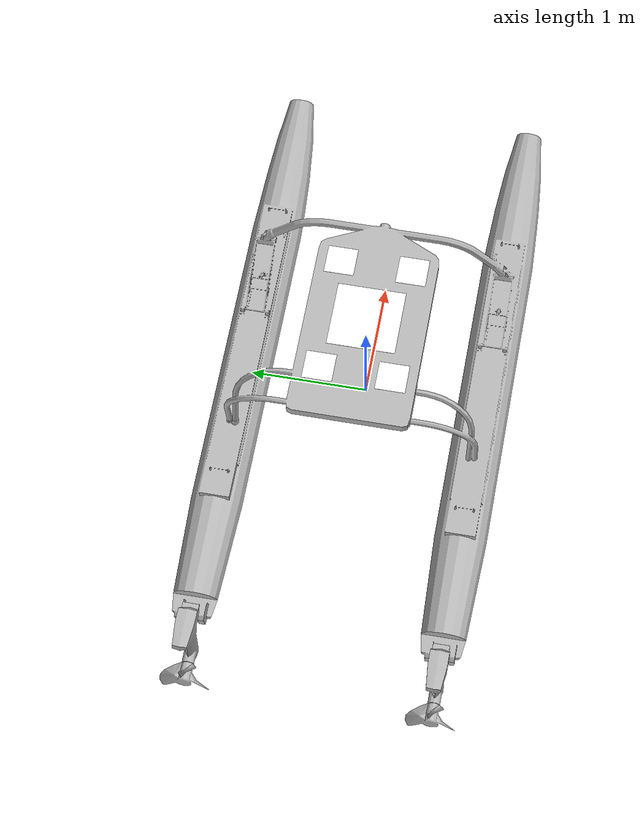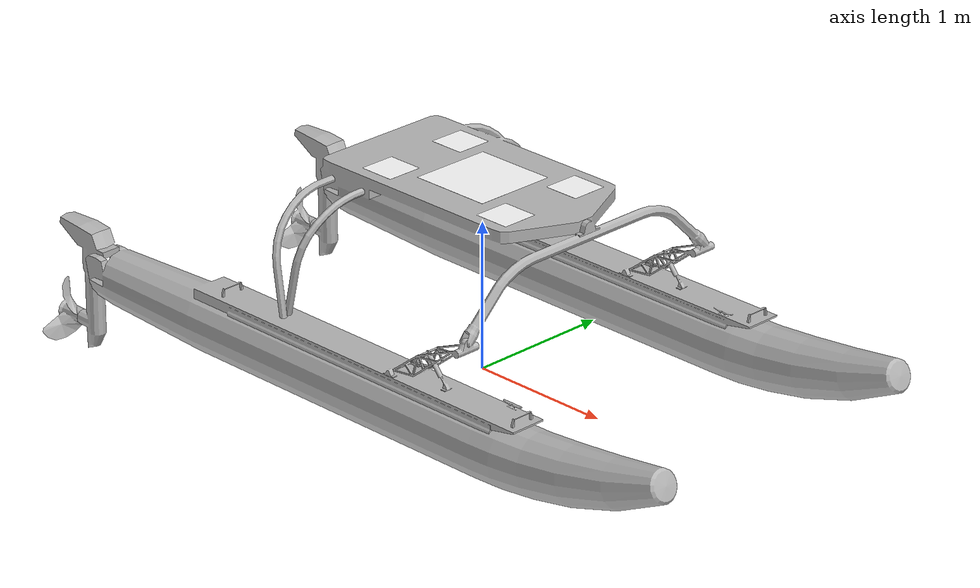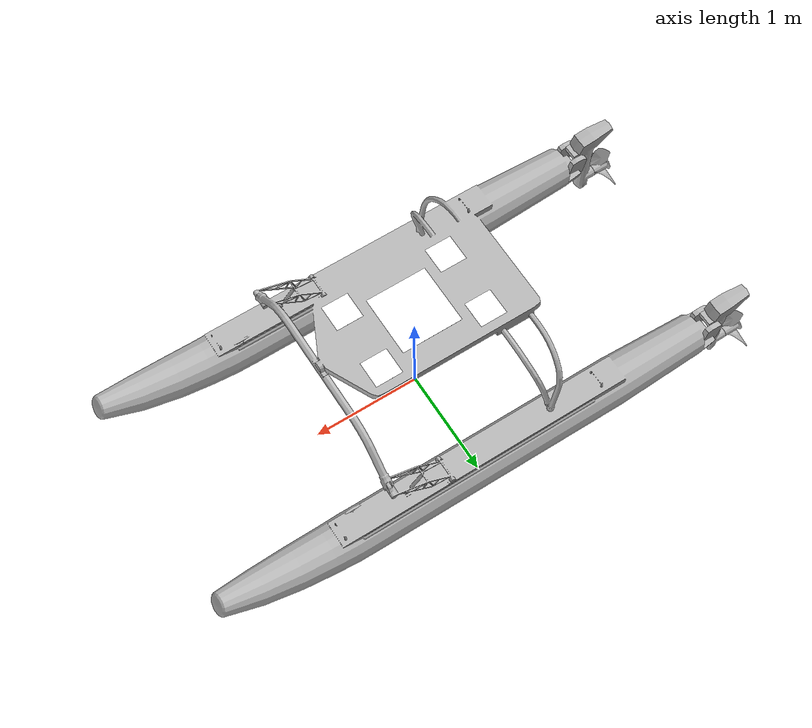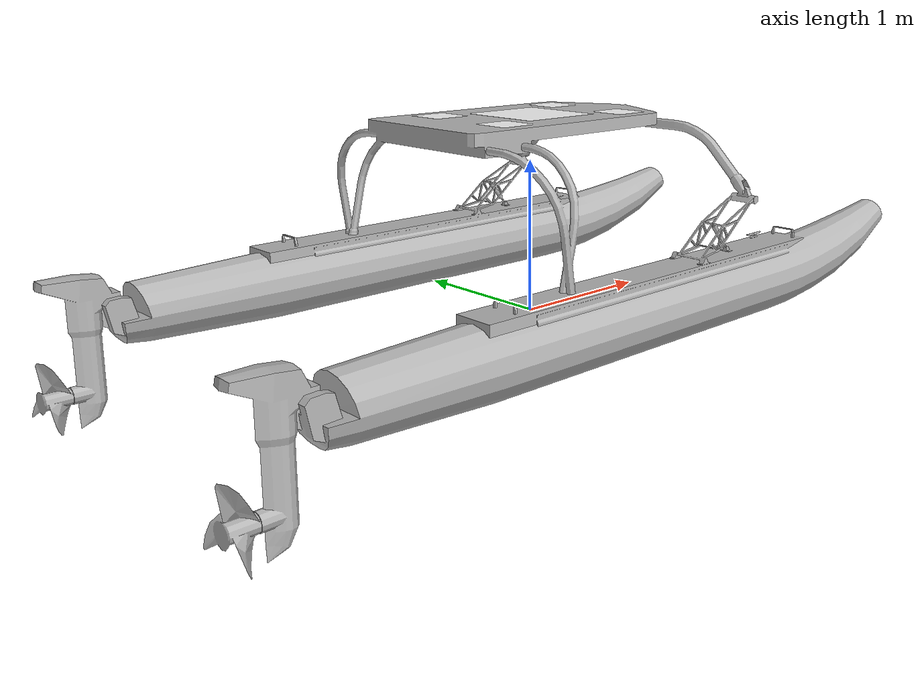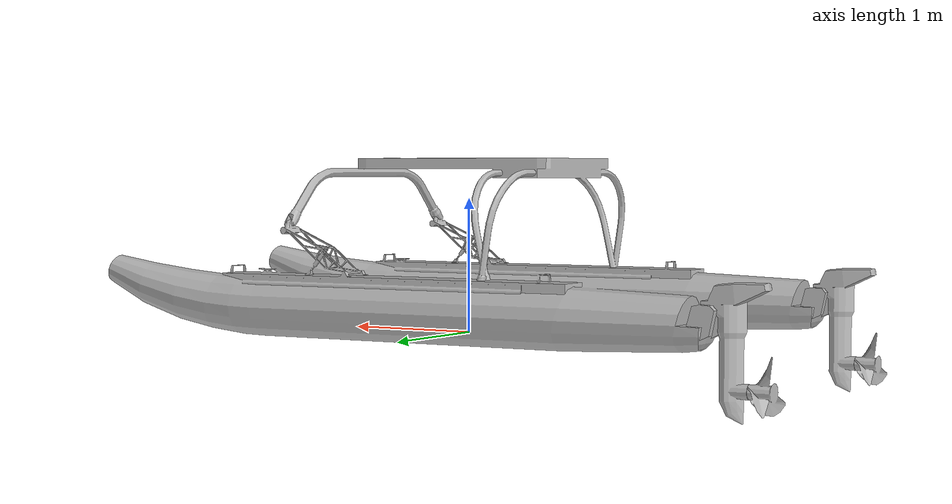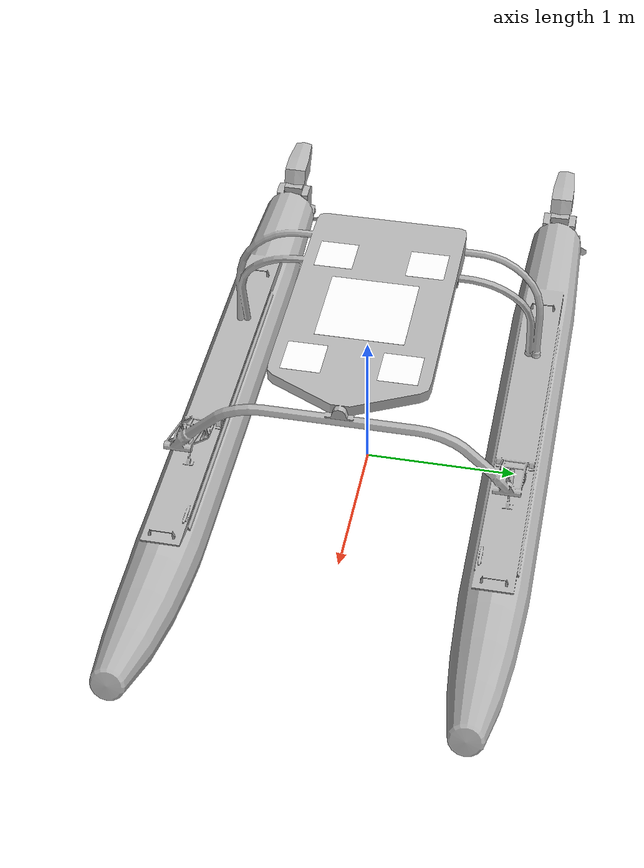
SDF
<?xml version='1.0'?>
<sdf version='1.7'>
  <model name='wam-v'>
    <enable_wind>true</enable_wind>

    <link name="base_link">
      <visual name="visual">
        <geometry>
          <mesh>
            <uri>model://wam-v/meshes/WAM-V-Base.dae</uri>
          </mesh>
        </geometry>
      </visual>
      <collision name="collision">
        <geometry>
          <mesh>
            <uri>model://wam-v/meshes/wam-v-base_collision_406.stl</uri>
          </mesh>
        </geometry>
      </collision>
      <inertial>
        <pose>0 0 0 0 0 0</pose>
        <mass>180</mass>
        <inertia>
          <ixx>120</ixx>
          <ixy>0</ixy>
          <iyy>393</iyy>
          <iyz>0</iyz>
          <izz>446</izz>
        </inertia>
      </inertial>
      <!-- Add the GPS sensor-->
      <sensor name="navsat_sensor" type="navsat">
        <always_on>1</always_on>
        <update_rate>20</update_rate>
        <topic>/wamv/navsat</topic>
      </sensor>
      <!-- Add Magenetometer -->
      <sensor name="magnetometer_sensor" type="magnetometer">
        <gz_frame_id>base_link</gz_frame_id>
        <update_rate>20</update_rate>
        <always_on>1</always_on>
        <topic>/wamv/magnetometer</topic>
        <magnetometer>
          <x>
            <noise type="gaussian">
              <stddev>0.000001</stddev>
            </noise>
          </x>
          <y>
            <noise type="gaussian">
              <stddev>0.000001</stddev>
            </noise>
          </y>
          <z>
            <noise type="gaussian">
              <stddev>0.000001</stddev>
            </noise>
          </z>
        </magnetometer>
      </sensor>
    </link>

    <link name="left_engine_link">
      <pose>-2.373776 1.027135 0.318237 0 0 0</pose>
      <visual name="visual">
        <geometry>
          <mesh>
            <uri>model://wam-v/meshes/engine.dae</uri>
          </mesh>
        </geometry>
      </visual>
      <collision name="engine_vertical_axis_collision">
        <pose>-0.16 0 -0.215 0 0 0</pose>
        <geometry>
          <box>
            <size>0.2 0.1 0.83</size>
          </box>
        </geometry>
      </collision>
      <collision name="engine_rear_end_collision">
        <pose>-0.34 0 0.12 0 0 0</pose>
        <geometry>
          <box>
            <size>0.12 0.15 0.12</size>
          </box>
        </geometry>
      </collision>
      <inertial>
        <mass>15</mass>
        <inertia>
          <ixx>0.88924</ixx>
          <ixy>0</ixy>
          <iyy>0.911125</iyy>
          <iyz>0</iyz>
          <izz>0.078125</izz>
        </inertia>
      </inertial>
    </link>
    <joint name="left_engine_joint" type="revolute">
      <parent>base_link</parent>
      <child>left_engine_link</child>
      <axis>
        <xyz>0 0 1</xyz>
        <limit>
          <lower>-1.570796</lower>
          <upper>1.570796</upper>
        </limit>
        <dynamics>
          <damping>0.05</damping>
        </dynamics>
      </axis>
    </joint>

    <link name="right_engine_link">
      <pose>-2.373776 -1.027135 0.318237 0 0 0</pose>
      <visual name="visual">
        <geometry>
          <mesh>
            <uri>model://wam-v/meshes/engine.dae</uri>
          </mesh>
        </geometry>
      </visual>
      <collision name="engine_vertical_axis_collision">
        <pose>-0.16 0 -0.215 0 0 0</pose>
        <geometry>
          <box>
            <size>0.2 0.1 0.83</size>
          </box>
        </geometry>
      </collision>
      <collision name="engine_rear_end_collision">
        <pose>-0.34 0 0.12 0 0 0</pose>
        <geometry>
          <box>
            <size>0.12 0.15 0.12</size>
          </box>
        </geometry>
      </collision>
      <inertial>
        <mass>15</mass>
        <inertia>
          <ixx>0.88924</ixx>
          <ixy>0</ixy>
          <iyy>0.911125</iyy>
          <iyz>0</iyz>
          <izz>0.078125</izz>
        </inertia>
      </inertial>
    </link>
    <joint name="right_engine_joint" type="revolute">
      <parent>base_link</parent>
      <child>right_engine_link</child>
      <axis>
        <xyz>0 0 1</xyz>
        <limit>
          <lower>-1.570796</lower>
          <upper>1.570796</upper>
        </limit>
        <dynamics>
          <damping>0.05</damping>
        </dynamics>
      </axis>
    </joint>

    <link name="left_propeller_link">
      <pose relative_to="left_propeller_joint">0 0 0 0 0 0</pose>
      <visual name="visual">
        <geometry>
          <mesh>
            <uri>model://wam-v/meshes/propeller.dae</uri>
          </mesh>
        </geometry>
      </visual>
      <collision name="collision">
        <pose>-0.11 0 0 0 1.570796 0</pose>
        <geometry>
          <cylinder>
            <length>0.08</length>
            <radius>0.24</radius>
          </cylinder>
        </geometry>
      </collision>
      <inertial>
        <mass>0.5</mass>
        <inertia>
          <ixx>0.008545</ixx>
          <ixy>0</ixy>
          <iyy>0.008545</iyy>
          <iyz>0</iyz>
          <izz>0.0144</izz>
        </inertia>
      </inertial>
    </link>
    <joint name="left_propeller_joint" type="revolute">
      <pose relative_to="left_engine_link">-0.278156 0 -0.509371 0 0 0</pose>
      <parent>left_engine_link</parent>
      <child>left_propeller_link</child>
      <axis>
        <xyz>1 0 0</xyz>
        <dynamics>
          <damping>0.01</damping>
        </dynamics>
        <limit>
          <lower>-1e+16</lower>
          <upper>1e+16</upper>
        </limit>
      </axis>
    </joint>

    <link name="right_propeller_link">
      <pose relative_to="right_propeller_joint">0 0 0 0 0 0</pose>
      <visual name="visual">
        <geometry>
          <mesh>
            <uri>model://wam-v/meshes/propeller.dae</uri>
          </mesh>
        </geometry>
      </visual>
      <collision name="collision">
        <pose>-0.11 0 0 0 1.570796 0</pose>
        <geometry>
          <cylinder>
            <length>0.08</length>
            <radius>0.24</radius>
          </cylinder>
        </geometry>
      </collision>
      <inertial>
        <mass>0.5</mass>
        <inertia>
          <ixx>0.008545</ixx>
          <ixy>0</ixy>
          <iyy>0.008545</iyy>
          <iyz>0</iyz>
          <izz>0.0144</izz>
        </inertia>
      </inertial>
    </link>
    <joint name="right_propeller_joint" type="revolute">
      <pose relative_to="right_engine_link">-0.278156 0 -0.509371 0 0 0</pose>
      <parent>right_engine_link</parent>
      <child>right_propeller_link</child>
      <axis>
        <xyz>1 0 0</xyz>
        <dynamics>
          <damping>0.01</damping>
        </dynamics>
        <limit>
          <lower>-1e+16</lower>
          <upper>1e+16</upper>
        </limit>
      </axis>
    </joint>

    <!-- Sensors -->
    <link name="imu_link">
      <inertial>
        <pose>0 0 0 0 0 0</pose>
        <mass>0.15</mass>
        <inertia>
          <ixx>0.00001</ixx>
          <ixy>0</ixy>
          <ixz>0</ixz>
          <iyy>0.00002</iyy>
          <iyz>0</iyz>
          <izz>0.00002</izz>
        </inertia>
      </inertial>
      <sensor name="imu_sensor" type="imu">
        <pose>0 0 0 3.141593 0 0</pose>
        <always_on>1</always_on>
        <update_rate>1000.0</update_rate>
      </sensor>
    </link>
    <joint name="imu_joint" type="revolute">
      <child>imu_link</child>
      <parent>base_link</parent>
      <axis>
        <xyz>0 0 1</xyz>
        <limit>
          <lower>0</lower>
          <upper>0</upper>
          <effort>0</effort>
          <velocity>0</velocity>
        </limit>
        <dynamics>
          <damping>1.0</damping>
        </dynamics>
      </axis>
    </joint>

    <!-- Joint state and force plugins -->
    <plugin filename="gz-sim-joint-state-publisher-system"
      name="gz::sim::systems::JointStatePublisher">
    </plugin>
    <plugin filename="gz-sim-odometry-publisher-system"
      name="gz::sim::systems::OdometryPublisher">
      <odom_frame>odom</odom_frame>
      <robot_base_frame>base_link</robot_base_frame>
      <odom_publish_frequency>50</odom_publish_frequency>
      <odom_topic>wamv/odometry</odom_topic>
      <dimensions>3</dimensions>
    </plugin>
    <plugin filename="gz-sim-apply-joint-force-system"
      name="gz::sim::systems::ApplyJointForce">
      <joint_name>left_engine_joint</joint_name>
    </plugin>
    <plugin filename="gz-sim-apply-joint-force-system"
      name="gz::sim::systems::ApplyJointForce">
      <joint_name>right_engine_joint</joint_name>
    </plugin>
    <plugin filename="gz-sim-joint-position-controller-system"
      name="gz::sim::systems::JointPositionController">
      <joint_name>left_engine_joint</joint_name>
      <topic>wamv/thrusters/left/pos</topic>
      <initial_position>0.0</initial_position>
      <p_gain>20.0</p_gain>
      <i_gain>0.0</i_gain>
      <d_gain>2.0</d_gain>
      <cmd_max>500.0</cmd_max>
      <cmd_min>-500.0</cmd_min>
    </plugin>
    <plugin filename="gz-sim-joint-position-controller-system"
      name="gz::sim::systems::JointPositionController">
      <joint_name>right_engine_joint</joint_name>
      <topic>wamv/thrusters/right/pos</topic>
      <initial_position>0.0</initial_position>
      <p_gain>20.0</p_gain>
      <i_gain>0.0</i_gain>
      <d_gain>2.0</d_gain>
      <cmd_max>500.0</cmd_max>
      <cmd_min>-500.0</cmd_min>
    </plugin>

    <!-- Thruster plugins -->
    <plugin
        filename="gz-sim-thruster-system"
        name="gz::sim::systems::Thruster">
      <namespace>wam-v</namespace>
      <joint_name>left_propeller_joint</joint_name>
      <use_angvel_cmd>0</use_angvel_cmd>
      <fluid_density>1000</fluid_density>
      <propeller_diameter>0.48</propeller_diameter>
      <thrust_coefficient>0.01</thrust_coefficient>
      <velocity_control>1</velocity_control>
      <max_thrust_cmd>2000.0</max_thrust_cmd>
      <min_thrust_cmd>-2000.0</min_thrust_cmd>
    </plugin>
    <plugin
        filename="gz-sim-thruster-system"
        name="gz::sim::systems::Thruster">
      <namespace>wam-v</namespace>
      <joint_name>right_propeller_joint</joint_name>
      <use_angvel_cmd>0</use_angvel_cmd>
      <fluid_density>1000</fluid_density>
      <propeller_diameter>0.48</propeller_diameter>
      <thrust_coefficient>0.01</thrust_coefficient>
      <velocity_control>1</velocity_control>
      <max_thrust_cmd>2000.0</max_thrust_cmd>
      <min_thrust_cmd>-2000.0</min_thrust_cmd>
    </plugin>

    <!-- Hydrodynamics plugin -->
    <plugin
        filename="gz-waves1-hydrodynamics-system"
        name="gz::sim::systems::Hydrodynamics">

        <enable>wam-v::base_link</enable>

        <hydrodynamics>
          <damping_on>1</damping_on>
          <viscous_drag_on>1</viscous_drag_on>
          <pressure_drag_on>1</pressure_drag_on>

          <!-- Linear and Angular Damping -->
          <cDampL1>1.0E-6</cDampL1>
          <cDampL2>1.0E-6</cDampL2>
          <cDampR1>1.0E-6</cDampR1>
          <cDampR2>1.0E-6</cDampR2>

          <!-- 'Pressure' Drag -->
          <cPDrag1>1.0E+2</cPDrag1>
          <cPDrag2>1.0E+2</cPDrag2>
          <fPDrag>0.4</fPDrag>
          <cSDrag1>1.0E+2</cSDrag1>
          <cSDrag2>1.0E+2</cSDrag2>
          <fSDrag>0.4</fSDrag>
          <vRDrag>1.0</vRDrag>
        </hydrodynamics>
    </plugin>

    <!-- ArduPilot plugin -->
    <plugin name="ArduPilotPlugin" filename="ArduPilotPlugin">
      <fdm_addr>127.0.0.1</fdm_addr>
      <fdm_port_in>9002</fdm_port_in>
      <connectionTimeoutMaxCount>5</connectionTimeoutMaxCount>
      <lock_step>1</lock_step>
      <modelXYZToAirplaneXForwardZDown>0 0 0 3.141593 0 0</modelXYZToAirplaneXForwardZDown>
      <gazeboXYZToNED>0 0 0 3.141593 0 1.57079632</gazeboXYZToNED>
      <imuName>imu_sensor</imuName>

      <!--
        SERVO1_FUNCTION 26 (GroundSteering)
      -->
      <control channel="0">
        <jointName>left_engine_joint</jointName>
        <useForce>1</useForce>
        <multiplier>3.1415926</multiplier>
        <offset>-0.5</offset>
        <servo_min>1000</servo_min>
        <servo_max>2000</servo_max>
        <type>POSITION</type>
        <p_gain>500.0</p_gain>
        <i_gain>0</i_gain>
        <d_gain>10</d_gain>
        <i_max>-1</i_max>
        <i_min>0</i_min>
        <cmd_max>5000.0</cmd_max>
        <cmd_min>-5000.0</cmd_min>
      </control>
      <control channel="0">
        <jointName>right_engine_joint</jointName>
        <useForce>1</useForce>
        <multiplier>3.1415926</multiplier>
        <offset>-0.5</offset>
        <servo_min>1000</servo_min>
        <servo_max>2000</servo_max>
        <type>POSITION</type>
        <p_gain>500.0</p_gain>
        <i_gain>0</i_gain>
        <d_gain>10</d_gain>
        <i_max>-1</i_max>
        <i_min>0</i_min>
        <cmd_max>5000.0</cmd_max>
        <cmd_min>-5000.0</cmd_min>
      </control>

        <!--
          SERVO3_FUNCTION 70 (Throttle)

          max thrust: +/- 1500 N (larger than VRX settings of +250 N / -100 N)

        -->
      <control channel="2">
        <jointName>left_propeller_joint</jointName>
        <useForce>1</useForce>
        <multiplier>3000</multiplier>
        <offset>-0.5</offset>
        <servo_min>1000</servo_min>
        <servo_max>2000</servo_max>
        <type>COMMAND</type>
        <cmd_topic>/model/wam-v/joint/left_propeller_joint/cmd_thrust</cmd_topic>
      </control>
      <control channel="2">
        <jointName>right_propeller_joint</jointName>
        <useForce>1</useForce>
        <multiplier>3000</multiplier>
        <offset>-0.5</offset>
        <servo_min>1000</servo_min>
        <servo_max>2000</servo_max>
        <type>COMMAND</type>
        <cmd_topic>/model/wam-v/joint/right_propeller_joint/cmd_thrust</cmd_topic>
      </control>
    </plugin>

    <!--Add the Apriltags-->
    <!-- AprilTag 1-->
    <include>
      <name>tag_1</name>
      <uri>model://apriltag_1</uri>
      <pose relative_to="base_link">0.5 0.3 1.30 0 0 -1.5708</pose>
    </include>
    <joint name="tag_1_joint" type="fixed">
      <parent>base_link</parent>
      <child>tag_1::link</child>
    </joint>
    <!-- AprilTag 10-->
    <include>
      <name>tag_10</name>
      <uri>model://apriltag_10</uri>
      <pose relative_to="base_link">0.5 -0.3 1.30 0 0 -1.5708</pose>
    </include>
    <joint name="tag_10_joint" type="fixed">
      <parent>base_link</parent>
      <child>tag_10::link</child>
    </joint>
    <!-- AprilTag 20-->
    <include>
      <name>tag_20</name>
      <uri>model://apriltag_20</uri>
      <pose relative_to="base_link">-0.5 0.3 1.30 0 0 -1.5708</pose>
    </include>
    <joint name="tag_20_joint" type="fixed">
      <parent>base_link</parent>
      <child>tag_20::link</child>
    </joint>
    <!-- AprilTag 30-->
    <include>
      <name>tag_30</name>
      <uri>model://apriltag_30</uri>
      <pose relative_to="base_link">-0.5 -0.3 1.30 0 0 -1.5708</pose>
    </include>
    <joint name="tag_30_joint" type="fixed">
      <parent>base_link</parent>
      <child>tag_30::link</child>
    </joint>
    <!-- fractal_4L_6-->
    <include>
      <name>fractal_4L_6</name>
      <uri>model://fractal_4L_6</uri>
      <pose relative_to="base_link">0.0 0.0 1.30 0 0 -1.5708</pose>
    </include>
    <joint name="fractal_4L_6_joint" type="fixed">
      <parent>base_link</parent>
      <child>fractal_4L_6::link</child>
    </joint>

  </model>
</sdf>

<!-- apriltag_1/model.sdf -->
<sdf version="1.10">
  <model name="apriltag_1">
    <static>true</static>
    <pose>0 0 0 0 0 0</pose>
    <link name="link">
      <visual name="visual">
        <cast_shadows>false</cast_shadows>
        <geometry>
          <plane>
            <normal>0 0 1</normal>
            <size>0.25 0.25</size> <!--Remember to add the margin equation size = (size_0(10))/8-->
          </plane>
        </geometry>
        <material>
          <ambient>1 1 1 1</ambient>
          <diffuse>1 1 1 1</diffuse>
          <specular>0 0 0 1</specular>
          <pbr>
            <metal>
              <albedo_map>model://apriltag_1/materials/textures/AprilTag-tag36h11-ID1.png</albedo_map>
              <metalness>0</metalness>
              <roughness>1</roughness>
            </metal>
          </pbr>
        </material>
      </visual>
    </link>
  </model>
</sdf>

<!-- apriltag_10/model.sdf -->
<sdf version="1.10">
  <model name="apriltag_10">
    <static>true</static>
    <pose>0 0 0 0 0 0</pose>
    <link name="link">
      <visual name="visual">
        <cast_shadows>false</cast_shadows>
        <geometry>
          <plane>
            <normal>0 0 1</normal>
            <size>0.25 0.25</size> <!--Remember to add the margin equation size = (size_0(10))/8 with size_0 =0.2-->
          </plane>
        </geometry>
        <material>
          <ambient>1 1 1 1</ambient>
          <diffuse>1 1 1 1</diffuse>
          <specular>0 0 0 1</specular>
          <pbr>
            <metal>
              <albedo_map>model://apriltag_10/materials/textures/AprilTag-tag36h11-ID10.png</albedo_map>
              <metalness>0</metalness>
              <roughness>1</roughness>
            </metal>
          </pbr>
        </material>
      </visual>
    </link>
  </model>
</sdf>

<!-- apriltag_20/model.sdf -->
<sdf version="1.10">
  <model name="apriltag_20">
    <static>true</static>
    <pose>0 0 0 0 0 0</pose>
    <link name="link">
      <visual name="visual">
        <cast_shadows>false</cast_shadows>
        <geometry>
          <plane>
            <normal>0 0 1</normal>
            <size>0.25 0.25</size> <!--Remember to add the margin equation size = (size_0(10))/8-->
          </plane>
        </geometry>
        <material>
          <ambient>1 1 1 1</ambient>
          <diffuse>1 1 1 1</diffuse>
          <specular>0 0 0 1</specular>
          <pbr>
            <metal>
              <albedo_map>model://apriltag_20/materials/textures/AprilTag-tag36h11-ID20.png</albedo_map>
              <metalness>0</metalness>
              <roughness>1</roughness>
            </metal>
          </pbr>
        </material>
      </visual>
    </link>
  </model>
</sdf>

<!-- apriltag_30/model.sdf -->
<sdf version="1.10">
  <model name="apriltag_30">
    <static>true</static>
    <pose>0 0 0 0 0 0</pose>
    <link name="link">
      <visual name="visual">
        <cast_shadows>false</cast_shadows>
        <geometry>
          <plane>
            <normal>0 0 1</normal>
            <size>0.25 0.25</size> <!--Remember to add the margin equation size = (size_0(10))/8-->
          </plane>
        </geometry>
        <material>
          <ambient>1 1 1 1</ambient>
          <diffuse>1 1 1 1</diffuse>
          <specular>0 0 0 1</specular>
          <pbr>
            <metal>
              <albedo_map>model://apriltag_30/materials/textures/AprilTag-tag36h11-ID30.png</albedo_map>
              <metalness>0</metalness>
              <roughness>1</roughness>
            </metal>
          </pbr>
        </material>
      </visual>
    </link>
  </model>
</sdf>

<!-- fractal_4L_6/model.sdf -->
<sdf version="1.10">
  <model name="fractal_4L_6">
    <static>true</static>
    <pose>0 0 0 0 0 0</pose>
    <link name="link">
      <visual name="visual">
        <cast_shadows>false</cast_shadows>
        <geometry>
          <plane>
            <normal>0 0 1</normal>
            <size>0.567 0.567</size> <!--Remember to add the margin equation size = (size_0(17))/15 with size_0 = 0.5-->
          </plane>
        </geometry>
        <material>
          <ambient>1 1 1 1</ambient>
          <diffuse>1 1 1 1</diffuse>
          <specular>0 0 0 1</specular>
          <pbr>
            <metal>
              <albedo_map>model://fractal_4L_6/materials/textures/fractal_4L_6.png</albedo_map>
              <metalness>0</metalness>
              <roughness>1</roughness>
            </metal>
          </pbr>
        </material>
      </visual>
    </link>
  </model>
</sdf>
